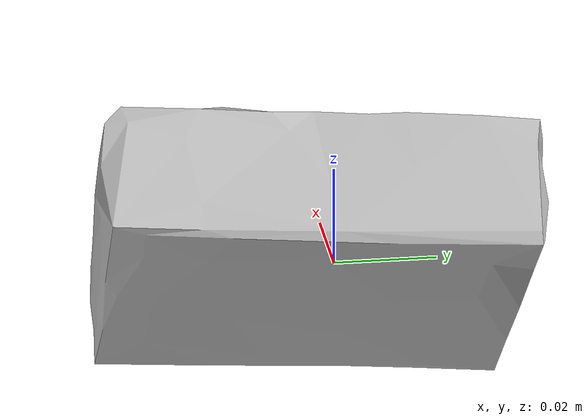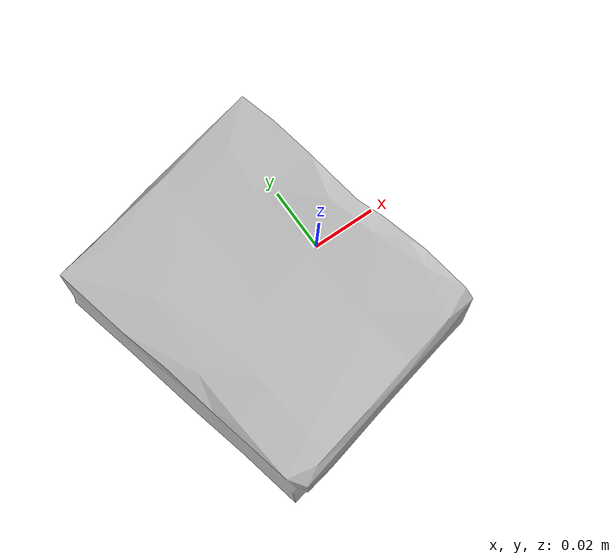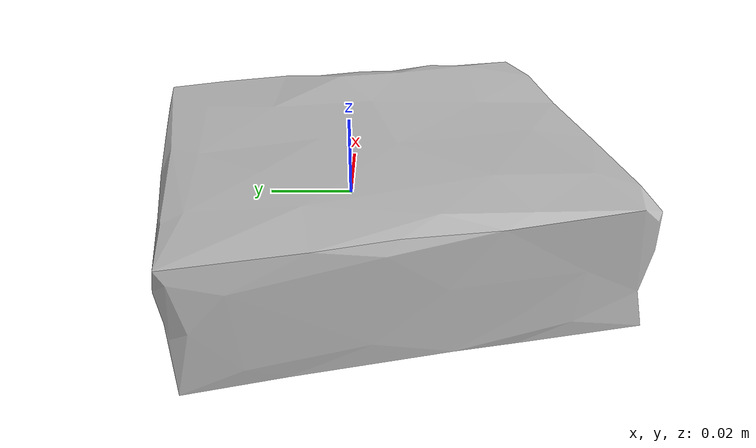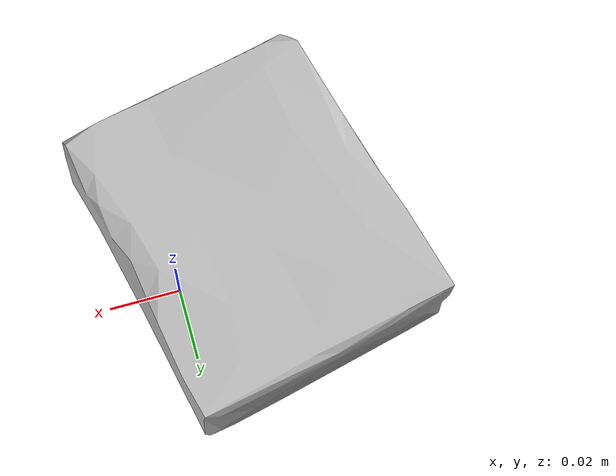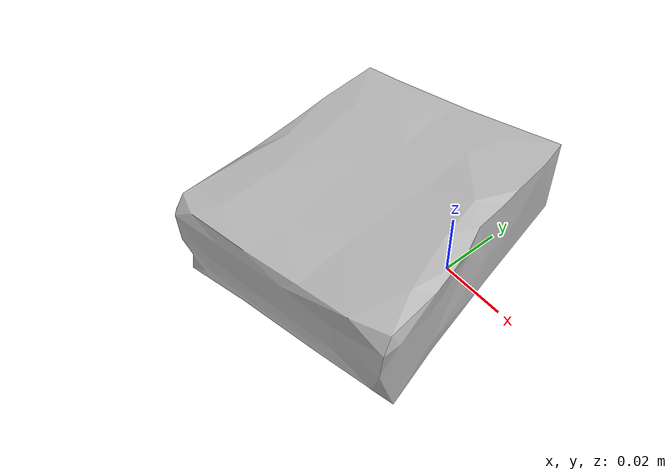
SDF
<?xml version='1.0'?>
<sdf version="1.4">
  <model name="009_gelatin_box">
    <static>false</static>
    <link name="link">
      <inertial>
        <pose>-0.022409813928578694 -0.008079108240722253 0.014002303492209317 0.5838201435945433 -1.5640325790247613 -1.9200241432512575</pose>
        <mass>0.017920177426489162</mass>
        <inertia>
          <ixx>1.898960050437139e-05</ixx>
          <ixy>-4.504925988772381e-25</ixy>
          <ixz>5.653601194334231e-23</ixz>
          <iyy>1.2448612181572567e-05</iyy>
          <iyz>-1.1322285337690308e-21</iyz>
          <izz>8.899458783237341e-06</izz>
        </inertia>
      </inertial>
      <collision name="collision">
        <geometry>
          <mesh>
            <!-- Use a downsampled mesh for collisions -->
            <uri>model:///009_gelatin_box/009_gelatin_box_250_collision.stl</uri>
	        </mesh>
        </geometry>
        <surface>
      </surface>
      </collision>
      <visual name="visual">
        <geometry>
          <mesh>
            <uri>model:///009_gelatin_box/textured.obj</uri>
	        </mesh>
        </geometry>
        <material>
          <script>
            <uri>model:///009_gelatin_box/009_gelatin_box.material</uri>
            <name>009_gelatin_box</name>
          </script>
        </material>
      </visual>
    </link>
  </model>
</sdf>
